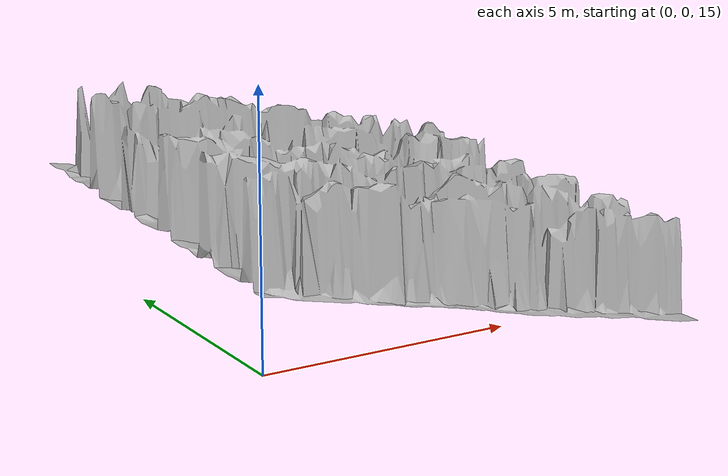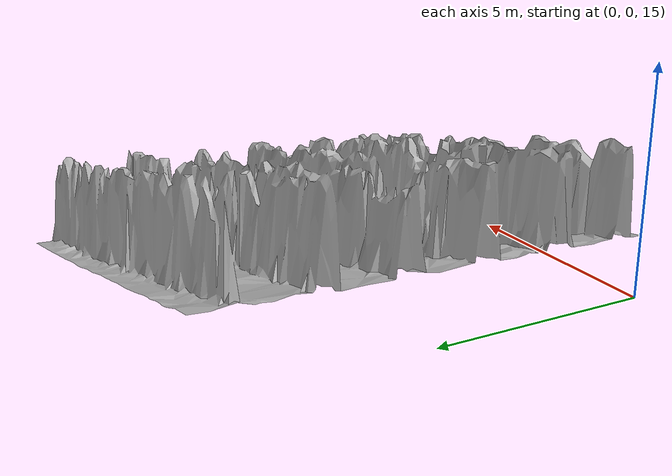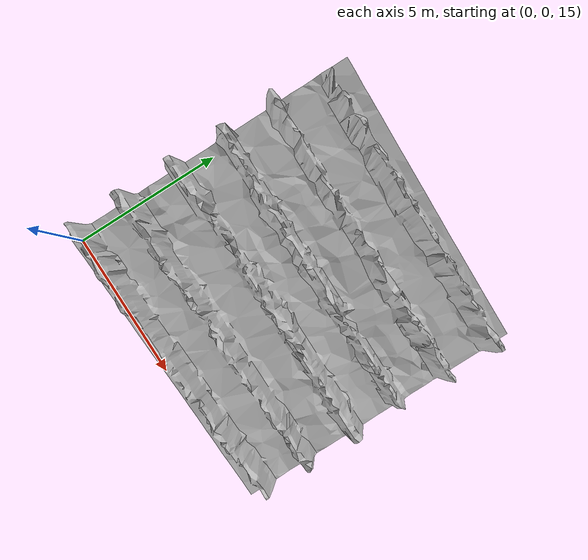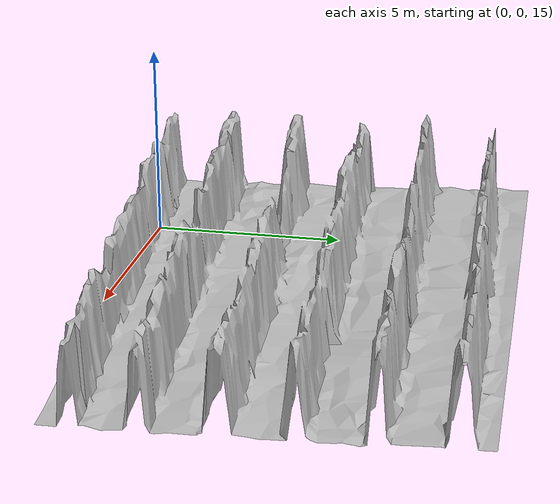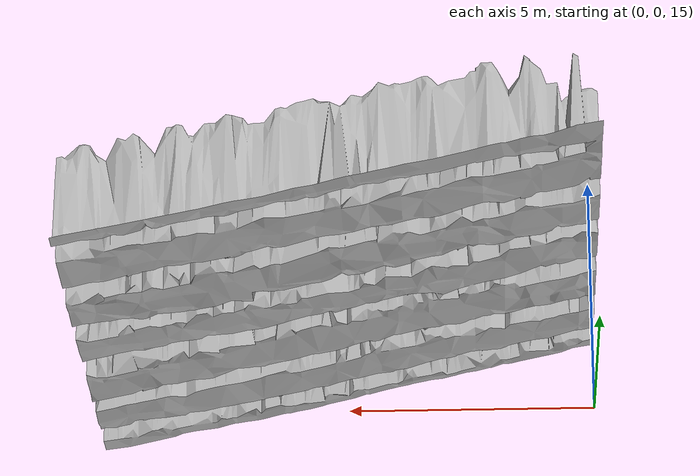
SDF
<?xml version="1.0" ?>
<sdf version="1.10">
    <model name="map_240_30">
        <link name="map_240_30_link">
            <visual name="map_240_30_visual">
                <geometry>
                    <mesh>
                        <uri>meshes/visual/map_240_30.obj</uri>
                    </mesh>
                </geometry>
            </visual>
            <collision name="map_240_30_collision">
                <surface>
                    <friction>
                        <ode>
                            <mu>2.316343837943928</mu>
                            <mu2>2.316343837943928</mu2>
                        </ode>
                        <bullet>
                            <friction>2.316343837943928</friction>
                            <friction2>2.316343837943928</friction2>
                        </bullet>
                    </friction>
                </surface>
                <geometry>
                    <mesh>
                        <uri>meshes/visual/map_240_30.obj</uri>
                    </mesh>
                </geometry>
            </collision>
        </link>
        <static>True</static>
    </model>
</sdf>
